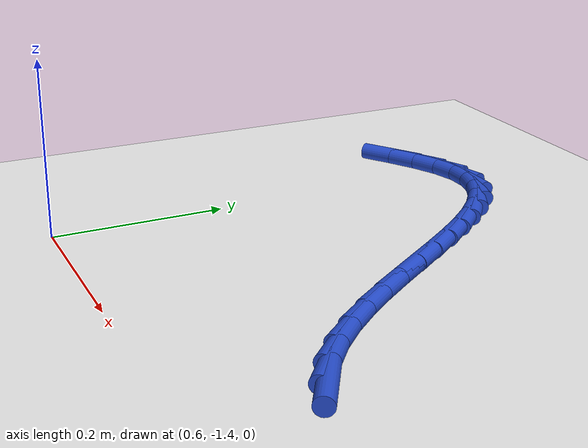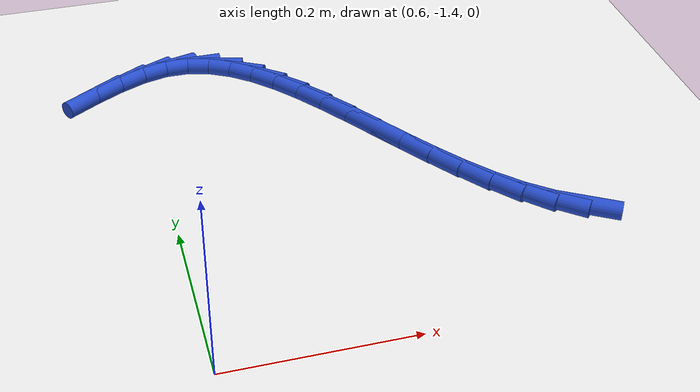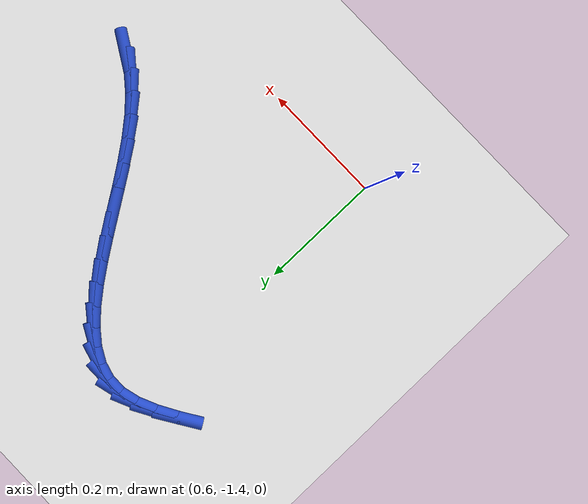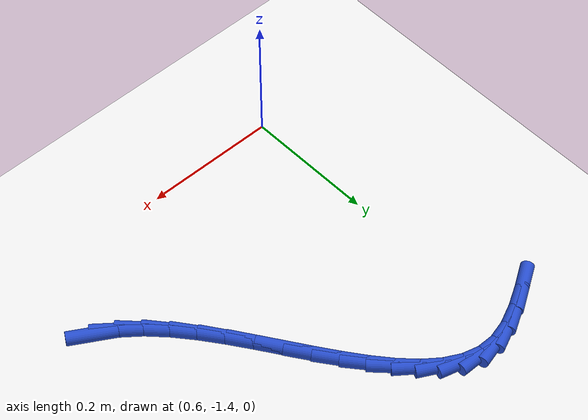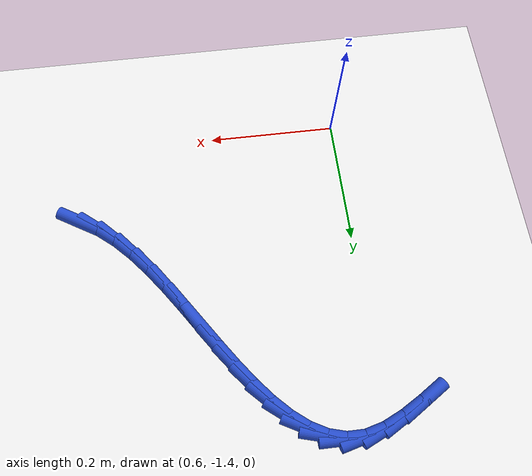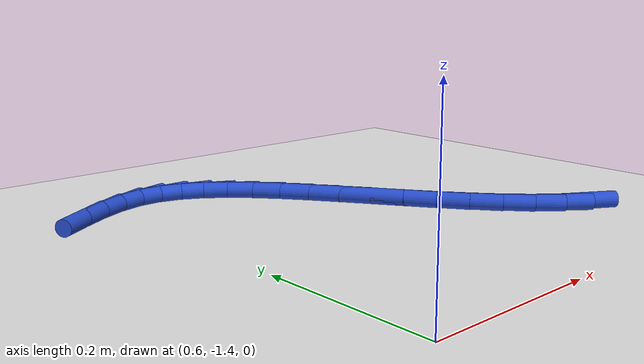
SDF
<sdf version="1.6">
 <world name="default">
  <model name="ground_plane">
   <static>1</static>
   <link name="link">
    <collision name="collision">
     <geometry><plane><normal>0 0 1</normal><size>100 100</size></plane></geometry>
     <surface><friction><ode><mu>100</mu><mu2>50</mu2></ode></friction></surface>
    </collision>
    <visual name="visual">
     <cast_shadows>0</cast_shadows>
     <geometry><plane><normal>0 0 1</normal><size>100 100</size></plane></geometry>
     <material>
      <script><uri>file://media/materials/scripts/gazebo.material</uri><name>Gazebo/WhiteGlow</name></script>
     </material>
    </visual>
   </link>
  </model>
  <model name="line">
   <link name="link_173">
    <pose>1.0170688333373619 -1.2709861470180777 0.01 0 1.57 -0.5417272152238497</pose>
    <collision name="collision">
     <geometry><cylinder><radius>0.01</radius><length>0.08</length></cylinder></geometry>
    </collision>
    <visual name="visual">
     <material>
      <script><name>Gazebo/Blue</name><uri>file://media/materials/scripts/gazebo.material</uri></script>
     </material>
     <geometry><cylinder><radius>0.01</radius><length>0.08</length></cylinder></geometry>
    </visual>
   </link>
   <link name="link_174">
    <pose>0.9896641331059849 -1.254494549529981 0.01 0 1.57 -0.6887614614694124</pose>
    <collision name="collision">
     <geometry><cylinder><radius>0.01</radius><length>0.08</length></cylinder></geometry>
    </collision>
    <visual name="visual">
     <material>
      <script><name>Gazebo/Blue</name><uri>file://media/materials/scripts/gazebo.material</uri></script>
     </material>
     <geometry><cylinder><radius>0.01</radius><length>0.08</length></cylinder></geometry>
    </visual>
   </link>
   <link name="link_175">
    <pose>0.9636547007242195 -1.233082127623523 0.01 0 1.57 -0.7985149349717646</pose>
    <collision name="collision">
     <geometry><cylinder><radius>0.01</radius><length>0.08</length></cylinder></geometry>
    </collision>
    <visual name="visual">
     <material>
      <script><name>Gazebo/Blue</name><uri>file://media/materials/scripts/gazebo.material</uri></script>
     </material>
     <geometry><cylinder><radius>0.01</radius><length>0.08</length></cylinder></geometry>
    </visual>
   </link>
   <link name="link_176">
    <pose>0.9388407224973048 -1.207608500533416 0.01 0 1.57 -0.8776587700004872</pose>
    <collision name="collision">
     <geometry><cylinder><radius>0.01</radius><length>0.08</length></cylinder></geometry>
    </collision>
    <visual name="visual">
     <material>
      <script><name>Gazebo/Blue</name><uri>file://media/materials/scripts/gazebo.material</uri></script>
     </material>
     <geometry><cylinder><radius>0.01</radius><length>0.08</length></cylinder></geometry>
    </visual>
   </link>
   <link name="link_177">
    <pose>0.915022384730476 -1.1789332874943672 0.01 0 1.57 -0.9322735030244632</pose>
    <collision name="collision">
     <geometry><cylinder><radius>0.01</radius><length>0.08</length></cylinder></geometry>
    </collision>
    <visual name="visual">
     <material>
      <script><name>Gazebo/Blue</name><uri>file://media/materials/scripts/gazebo.material</uri></script>
     </material>
     <geometry><cylinder><radius>0.01</radius><length>0.08</length></cylinder></geometry>
    </visual>
   </link>
   <link name="link_178">
    <pose>0.8919998737289705 -1.1479161077410873 0.01 0 1.57 -0.966775324872702</pose>
    <collision name="collision">
     <geometry><cylinder><radius>0.01</radius><length>0.08</length></cylinder></geometry>
    </collision>
    <visual name="visual">
     <material>
      <script><name>Gazebo/Blue</name><uri>file://media/materials/scripts/gazebo.material</uri></script>
     </material>
     <geometry><cylinder><radius>0.01</radius><length>0.08</length></cylinder></geometry>
    </visual>
   </link>
   <link name="link_179">
    <pose>0.8695733757980235 -1.1154165805082845 0.01 0 1.57 -0.9838647547942135</pose>
    <collision name="collision">
     <geometry><cylinder><radius>0.01</radius><length>0.08</length></cylinder></geometry>
    </collision>
    <visual name="visual">
     <material>
      <script><name>Gazebo/Blue</name><uri>file://media/materials/scripts/gazebo.material</uri></script>
     </material>
     <geometry><cylinder><radius>0.01</radius><length>0.08</length></cylinder></geometry>
    </visual>
   </link>
   <link name="link_180">
    <pose>0.8475430772428738 -1.0822943250306705 0.01 0 1.57 -0.984683707968755</pose>
    <collision name="collision">
     <geometry><cylinder><radius>0.01</radius><length>0.08</length></cylinder></geometry>
    </collision>
    <visual name="visual">
     <material>
      <script><name>Gazebo/Blue</name><uri>file://media/materials/scripts/gazebo.material</uri></script>
     </material>
     <geometry><cylinder><radius>0.01</radius><length>0.08</length></cylinder></geometry>
    </visual>
   </link>
   <link name="link_181">
    <pose>0.8257091643687574 -1.0494089605429535 0.01 0 1.57 -0.9688828195441775</pose>
    <collision name="collision">
     <geometry><cylinder><radius>0.01</radius><length>0.08</length></cylinder></geometry>
    </collision>
    <visual name="visual">
     <material>
      <script><name>Gazebo/Blue</name><uri>file://media/materials/scripts/gazebo.material</uri></script>
     </material>
     <geometry><cylinder><radius>0.01</radius><length>0.08</length></cylinder></geometry>
    </visual>
   </link>
   <link name="link_182">
    <pose>0.8038718234809104 -1.017620106279843 0.01 0 1.57 -0.9344982476951955</pose>
    <collision name="collision">
     <geometry><cylinder><radius>0.01</radius><length>0.08</length></cylinder></geometry>
    </collision>
    <visual name="visual">
     <material>
      <script><name>Gazebo/Blue</name><uri>file://media/materials/scripts/gazebo.material</uri></script>
     </material>
     <geometry><cylinder><radius>0.01</radius><length>0.08</length></cylinder></geometry>
    </visual>
   </link>
   <link name="link_183">
    <pose>0.78183124088457 -0.987787381476049 0.01 0 1.57 -0.8776002354331265</pose>
    <collision name="collision">
     <geometry><cylinder><radius>0.01</radius><length>0.08</length></cylinder></geometry>
    </collision>
    <visual name="visual">
     <material>
      <script><name>Gazebo/Blue</name><uri>file://media/materials/scripts/gazebo.material</uri></script>
     </material>
     <geometry><cylinder><radius>0.01</radius><length>0.08</length></cylinder></geometry>
    </visual>
   </link>
   <link name="link_184">
    <pose>0.7593876028849725 -0.9607704053662803 0.01 0 1.57 -0.7917596441532881</pose>
    <collision name="collision">
     <geometry><cylinder><radius>0.01</radius><length>0.08</length></cylinder></geometry>
    </collision>
    <visual name="visual">
     <material>
      <script><name>Gazebo/Blue</name><uri>file://media/materials/scripts/gazebo.material</uri></script>
     </material>
     <geometry><cylinder><radius>0.01</radius><length>0.08</length></cylinder></geometry>
    </visual>
   </link>
   <link name="link_185">
    <pose>0.7363410957873554 -0.9374287971852477 0.01 0 1.57 -0.6677289863400401</pose>
    <collision name="collision">
     <geometry><cylinder><radius>0.01</radius><length>0.08</length></cylinder></geometry>
    </collision>
    <visual name="visual">
     <material>
      <script><name>Gazebo/Blue</name><uri>file://media/materials/scripts/gazebo.material</uri></script>
     </material>
     <geometry><cylinder><radius>0.01</radius><length>0.08</length></cylinder></geometry>
    </visual>
   </link>
   <link name="link_186">
    <pose>0.712491905896955 -0.9186221761676601 0.01 0 1.57 -0.49488723674617113</pose>
    <collision name="collision">
     <geometry><cylinder><radius>0.01</radius><length>0.08</length></cylinder></geometry>
    </collision>
    <visual name="visual">
     <material>
      <script><name>Gazebo/Blue</name><uri>file://media/materials/scripts/gazebo.material</uri></script>
     </material>
     <geometry><cylinder><radius>0.01</radius><length>0.08</length></cylinder></geometry>
    </visual>
   </link>
   <link name="link_187">
    <pose>0.6876402195190081 -0.9052101615482271 0.01 0 1.57 -0.2681142670951828</pose>
    <collision name="collision">
     <geometry><cylinder><radius>0.01</radius><length>0.08</length></cylinder></geometry>
    </collision>
    <visual name="visual">
     <material>
      <script><name>Gazebo/Blue</name><uri>file://media/materials/scripts/gazebo.material</uri></script>
     </material>
     <geometry><cylinder><radius>0.01</radius><length>0.08</length></cylinder></geometry>
    </visual>
   </link>
   <link name="link_188">
    <pose>0.6615862229587504 -0.8980523725616578 0.01 0 1.57 -0.0016005204221172084</pose>
    <collision name="collision">
     <geometry><cylinder><radius>0.01</radius><length>0.08</length></cylinder></geometry>
    </collision>
    <visual name="visual">
     <material>
      <script><name>Gazebo/Blue</name><uri>file://media/materials/scripts/gazebo.material</uri></script>
     </material>
     <geometry><cylinder><radius>0.01</radius><length>0.08</length></cylinder></geometry>
    </visual>
   </link>
   <link name="link_189">
    <pose>0.6341301025214202 -0.8980084284426624 0.01 0 1.57 0.2539836357014972</pose>
    <collision name="collision">
     <geometry><cylinder><radius>0.01</radius><length>0.08</length></cylinder></geometry>
    </collision>
    <visual name="visual">
     <material>
      <script><name>Gazebo/Blue</name><uri>file://media/materials/scripts/gazebo.material</uri></script>
     </material>
     <geometry><cylinder><radius>0.01</radius><length>0.08</length></cylinder></geometry>
    </visual>
   </link>
   <link name="link_190">
    <pose>0.6051722448588142 -0.9055255880324699 0.01 0 1.57 0.4246723797247268</pose>
    <collision name="collision">
     <geometry><cylinder><radius>0.01</radius><length>0.08</length></cylinder></geometry>
    </collision>
    <visual name="visual">
     <material>
      <script><name>Gazebo/Blue</name><uri>file://media/materials/scripts/gazebo.material</uri></script>
     </material>
     <geometry><cylinder><radius>0.01</radius><length>0.08</length></cylinder></geometry>
    </visual>
   </link>
   <link name="link_191">
    <pose>0.5750790264307315 -0.9191333948431661 0.01 0 1.57 0.5219077524916236</pose>
    <collision name="collision">
     <geometry><cylinder><radius>0.01</radius><length>0.08</length></cylinder></geometry>
    </collision>
    <visual name="visual">
     <material>
      <script><name>Gazebo/Blue</name><uri>file://media/materials/scripts/gazebo.material</uri></script>
     </material>
     <geometry><cylinder><radius>0.01</radius><length>0.08</length></cylinder></geometry>
    </visual>
   </link>
   <link name="link_192">
    <pose>0.5443521847872345 -0.9368043329118992 0.01 0 1.57 0.5683221047618198</pose>
    <collision name="collision">
     <geometry><cylinder><radius>0.01</radius><length>0.08</length></cylinder></geometry>
    </collision>
    <visual name="visual">
     <material>
      <script><name>Gazebo/Blue</name><uri>file://media/materials/scripts/gazebo.material</uri></script>
     </material>
     <geometry><cylinder><radius>0.01</radius><length>0.08</length></cylinder></geometry>
    </visual>
   </link>
  </model>
 </world>
</sdf>
